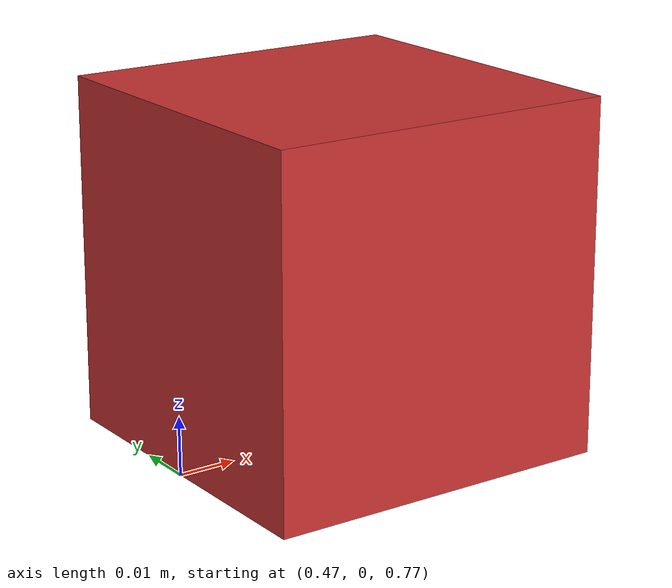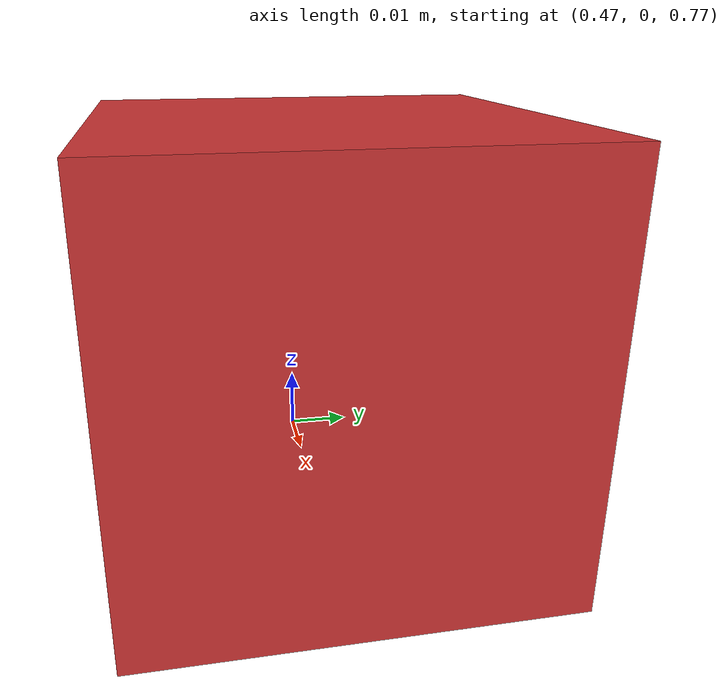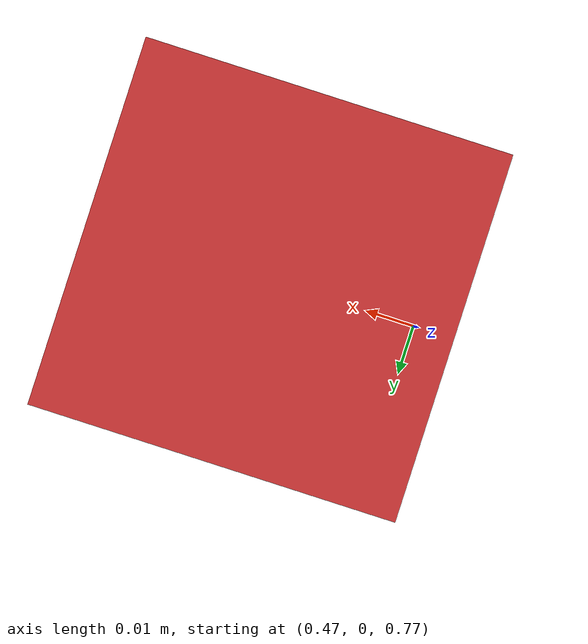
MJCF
<mujoco model="cube">
    <worldbody>
        <body name="body_obj_cube" pos="0.5 0 0.8">
            <freejoint />
 <geom
                name="cube_collision"
                type="box"
                size="0.035 0.035 0.035"
                rgba="0 0 0 0"
                contype="1"
                conaffinity="1"
                solref="0.01 1"
                solimp="0.9 0.95 0.001"
                density="1000"
            />

            <geom
                name="cube_visual"
                type="box"
                size="0.03 0.03 0.03"
                rgba="0.8 0.2 0.2 1"
                contype="0"
                conaffinity="0"
            />
        </body>
    </worldbody>
</mujoco>
